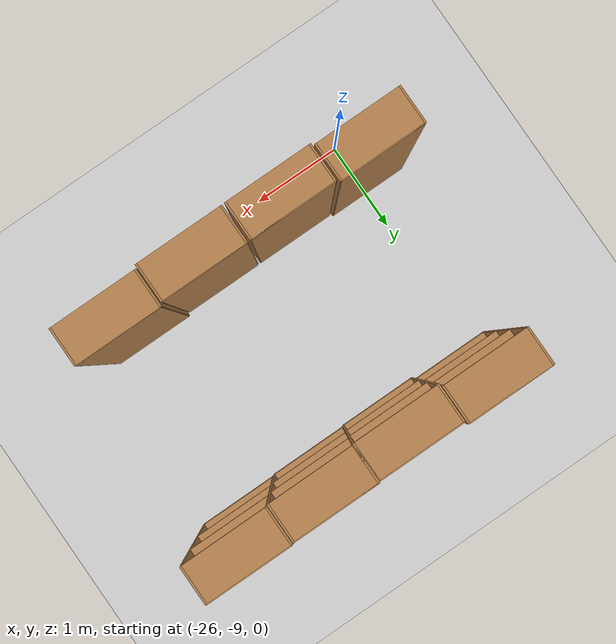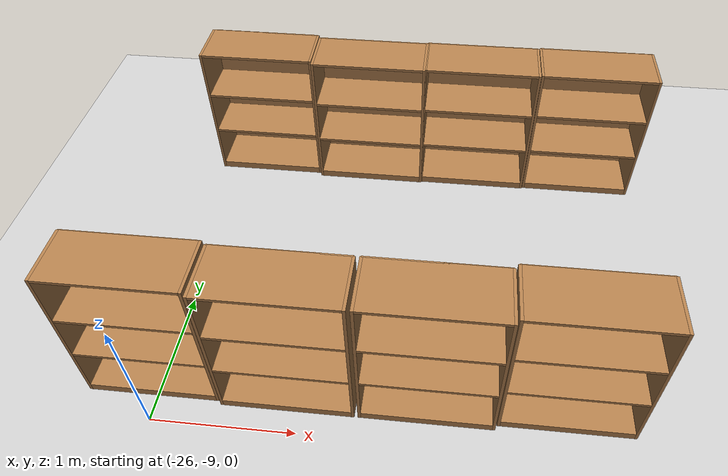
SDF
<sdf version="1.6">
 <world name="default">
  <model name="ground_plane">
   <static>1</static>
   <link name="link">
    <collision name="collision">
     <geometry><plane><normal>0 0 1</normal><size>100 100</size></plane></geometry>
     <surface><friction><ode><mu>100</mu><mu2>50</mu2></ode></friction></surface>
    </collision>
    <visual name="visual">
     <cast_shadows>0</cast_shadows>
     <geometry><plane><normal>0 0 1</normal><size>100 100</size></plane></geometry>
     <material>
      <script><uri>file://media/materials/scripts/gazebo.material</uri><name>Gazebo/Grey</name></script>
     </material>
    </visual>
   </link>
  </model>
  <model name="bookshelf">
   <static>1</static>
   <link name="link">
    <inertial><mass>1</mass></inertial>
    <collision name="back">
     <pose>0 0.005 0.6 0 -0 0</pose>
     <geometry><box><size>0.9 0.01 1.2</size></box></geometry>
    </collision>
    <visual name="visual1">
     <pose>0 0.005 0.6 0 -0 0</pose>
     <geometry><box><size>0.9 0.01 1.2</size></box></geometry>
     <material>
      <script><uri>file://media/materials/scripts/gazebo.material</uri><name>Gazebo/Wood</name></script>
     </material>
    </visual>
    <collision name="left_side">
     <pose>0.45 -0.195 0.6 0 -0 0</pose>
     <geometry><box><size>0.02 0.4 1.2</size></box></geometry>
    </collision>
    <visual name="visual2">
     <pose>0.45 -0.195 0.6 0 -0 0</pose>
     <geometry><box><size>0.02 0.4 1.2</size></box></geometry>
     <material>
      <script><uri>file://media/materials/scripts/gazebo.material</uri><name>Gazebo/Wood</name></script>
     </material>
    </visual>
    <collision name="right_side">
     <pose>-0.45 -0.195 0.6 0 -0 0</pose>
     <geometry><box><size>0.02 0.4 1.2</size></box></geometry>
    </collision>
    <visual name="visual3">
     <pose>-0.45 -0.195 0.6 0 -0 0</pose>
     <geometry><box><size>0.02 0.4 1.2</size></box></geometry>
     <material>
      <script><uri>file://media/materials/scripts/gazebo.material</uri><name>Gazebo/Wood</name></script>
     </material>
    </visual>
    <collision name="bottom">
     <pose>0 -0.195 0.03 0 -0 0</pose>
     <geometry><box><size>0.88 0.4 0.06</size></box></geometry>
    </collision>
    <visual name="visual4">
     <pose>0 -0.195 0.03 0 -0 0</pose>
     <geometry><box><size>0.88 0.4 0.06</size></box></geometry>
     <material>
      <script><uri>file://media/materials/scripts/gazebo.material</uri><name>Gazebo/Wood</name></script>
     </material>
    </visual>
    <collision name="top">
     <pose>0 -0.195 1.19 0 -0 0</pose>
     <geometry><box><size>0.88 0.4 0.02</size></box></geometry>
    </collision>
    <visual name="visual5">
     <pose>0 -0.195 1.19 0 -0 0</pose>
     <geometry><box><size>0.88 0.4 0.02</size></box></geometry>
     <material>
      <script><uri>file://media/materials/scripts/gazebo.material</uri><name>Gazebo/Wood</name></script>
     </material>
    </visual>
    <collision name="low_shelf">
     <pose>0 -0.195 0.43 0 -0 0</pose>
     <geometry><box><size>0.88 0.4 0.02</size></box></geometry>
    </collision>
    <visual name="visual6">
     <pose>0 -0.195 0.43 0 -0 0</pose>
     <geometry><box><size>0.88 0.4 0.02</size></box></geometry>
     <material>
      <script><uri>file://media/materials/scripts/gazebo.material</uri><name>Gazebo/Wood</name></script>
     </material>
    </visual>
    <collision name="high_shelf">
     <pose>0 -0.195 0.8 0 -0 0</pose>
     <geometry><box><size>0.88 0.4 0.02</size></box></geometry>
    </collision>
    <visual name="visual7">
     <pose>0 -0.195 0.8 0 -0 0</pose>
     <geometry><box><size>0.88 0.4 0.02</size></box></geometry>
     <material>
      <script><uri>file://media/materials/scripts/gazebo.material</uri><name>Gazebo/Wood</name></script>
     </material>
    </visual>
   </link>
   <pose>-23.9076 -6.07954 0 0 -0 0</pose>
  </model>
  <model name="bookshelf_0">
   <static>1</static>
   <link name="link">
    <inertial><mass>1</mass></inertial>
    <collision name="back">
     <pose>0 0.005 0.6 0 -0 0</pose>
     <geometry><box><size>0.9 0.01 1.2</size></box></geometry>
    </collision>
    <visual name="visual1">
     <pose>0 0.005 0.6 0 -0 0</pose>
     <geometry><box><size>0.9 0.01 1.2</size></box></geometry>
     <material>
      <script><uri>file://media/materials/scripts/gazebo.material</uri><name>Gazebo/Wood</name></script>
     </material>
    </visual>
    <collision name="left_side">
     <pose>0.45 -0.195 0.6 0 -0 0</pose>
     <geometry><box><size>0.02 0.4 1.2</size></box></geometry>
    </collision>
    <visual name="visual2">
     <pose>0.45 -0.195 0.6 0 -0 0</pose>
     <geometry><box><size>0.02 0.4 1.2</size></box></geometry>
     <material>
      <script><uri>file://media/materials/scripts/gazebo.material</uri><name>Gazebo/Wood</name></script>
     </material>
    </visual>
    <collision name="right_side">
     <pose>-0.45 -0.195 0.6 0 -0 0</pose>
     <geometry><box><size>0.02 0.4 1.2</size></box></geometry>
    </collision>
    <visual name="visual3">
     <pose>-0.45 -0.195 0.6 0 -0 0</pose>
     <geometry><box><size>0.02 0.4 1.2</size></box></geometry>
     <material>
      <script><uri>file://media/materials/scripts/gazebo.material</uri><name>Gazebo/Wood</name></script>
     </material>
    </visual>
    <collision name="bottom">
     <pose>0 -0.195 0.03 0 -0 0</pose>
     <geometry><box><size>0.88 0.4 0.06</size></box></geometry>
    </collision>
    <visual name="visual4">
     <pose>0 -0.195 0.03 0 -0 0</pose>
     <geometry><box><size>0.88 0.4 0.06</size></box></geometry>
     <material>
      <script><uri>file://media/materials/scripts/gazebo.material</uri><name>Gazebo/Wood</name></script>
     </material>
    </visual>
    <collision name="top">
     <pose>0 -0.195 1.19 0 -0 0</pose>
     <geometry><box><size>0.88 0.4 0.02</size></box></geometry>
    </collision>
    <visual name="visual5">
     <pose>0 -0.195 1.19 0 -0 0</pose>
     <geometry><box><size>0.88 0.4 0.02</size></box></geometry>
     <material>
      <script><uri>file://media/materials/scripts/gazebo.material</uri><name>Gazebo/Wood</name></script>
     </material>
    </visual>
    <collision name="low_shelf">
     <pose>0 -0.195 0.43 0 -0 0</pose>
     <geometry><box><size>0.88 0.4 0.02</size></box></geometry>
    </collision>
    <visual name="visual6">
     <pose>0 -0.195 0.43 0 -0 0</pose>
     <geometry><box><size>0.88 0.4 0.02</size></box></geometry>
     <material>
      <script><uri>file://media/materials/scripts/gazebo.material</uri><name>Gazebo/Wood</name></script>
     </material>
    </visual>
    <collision name="high_shelf">
     <pose>0 -0.195 0.8 0 -0 0</pose>
     <geometry><box><size>0.88 0.4 0.02</size></box></geometry>
    </collision>
    <visual name="visual7">
     <pose>0 -0.195 0.8 0 -0 0</pose>
     <geometry><box><size>0.88 0.4 0.02</size></box></geometry>
     <material>
      <script><uri>file://media/materials/scripts/gazebo.material</uri><name>Gazebo/Wood</name></script>
     </material>
    </visual>
   </link>
   <pose>-22.9842 -6.06926 0 0 -0 0</pose>
  </model>
  <model name="bookshelf_1">
   <static>1</static>
   <link name="link">
    <inertial><mass>1</mass></inertial>
    <collision name="back">
     <pose>0 0.005 0.6 0 -0 0</pose>
     <geometry><box><size>0.9 0.01 1.2</size></box></geometry>
    </collision>
    <visual name="visual1">
     <pose>0 0.005 0.6 0 -0 0</pose>
     <geometry><box><size>0.9 0.01 1.2</size></box></geometry>
     <material>
      <script><uri>file://media/materials/scripts/gazebo.material</uri><name>Gazebo/Wood</name></script>
     </material>
    </visual>
    <collision name="left_side">
     <pose>0.45 -0.195 0.6 0 -0 0</pose>
     <geometry><box><size>0.02 0.4 1.2</size></box></geometry>
    </collision>
    <visual name="visual2">
     <pose>0.45 -0.195 0.6 0 -0 0</pose>
     <geometry><box><size>0.02 0.4 1.2</size></box></geometry>
     <material>
      <script><uri>file://media/materials/scripts/gazebo.material</uri><name>Gazebo/Wood</name></script>
     </material>
    </visual>
    <collision name="right_side">
     <pose>-0.45 -0.195 0.6 0 -0 0</pose>
     <geometry><box><size>0.02 0.4 1.2</size></box></geometry>
    </collision>
    <visual name="visual3">
     <pose>-0.45 -0.195 0.6 0 -0 0</pose>
     <geometry><box><size>0.02 0.4 1.2</size></box></geometry>
     <material>
      <script><uri>file://media/materials/scripts/gazebo.material</uri><name>Gazebo/Wood</name></script>
     </material>
    </visual>
    <collision name="bottom">
     <pose>0 -0.195 0.03 0 -0 0</pose>
     <geometry><box><size>0.88 0.4 0.06</size></box></geometry>
    </collision>
    <visual name="visual4">
     <pose>0 -0.195 0.03 0 -0 0</pose>
     <geometry><box><size>0.88 0.4 0.06</size></box></geometry>
     <material>
      <script><uri>file://media/materials/scripts/gazebo.material</uri><name>Gazebo/Wood</name></script>
     </material>
    </visual>
    <collision name="top">
     <pose>0 -0.195 1.19 0 -0 0</pose>
     <geometry><box><size>0.88 0.4 0.02</size></box></geometry>
    </collision>
    <visual name="visual5">
     <pose>0 -0.195 1.19 0 -0 0</pose>
     <geometry><box><size>0.88 0.4 0.02</size></box></geometry>
     <material>
      <script><uri>file://media/materials/scripts/gazebo.material</uri><name>Gazebo/Wood</name></script>
     </material>
    </visual>
    <collision name="low_shelf">
     <pose>0 -0.195 0.43 0 -0 0</pose>
     <geometry><box><size>0.88 0.4 0.02</size></box></geometry>
    </collision>
    <visual name="visual6">
     <pose>0 -0.195 0.43 0 -0 0</pose>
     <geometry><box><size>0.88 0.4 0.02</size></box></geometry>
     <material>
      <script><uri>file://media/materials/scripts/gazebo.material</uri><name>Gazebo/Wood</name></script>
     </material>
    </visual>
    <collision name="high_shelf">
     <pose>0 -0.195 0.8 0 -0 0</pose>
     <geometry><box><size>0.88 0.4 0.02</size></box></geometry>
    </collision>
    <visual name="visual7">
     <pose>0 -0.195 0.8 0 -0 0</pose>
     <geometry><box><size>0.88 0.4 0.02</size></box></geometry>
     <material>
      <script><uri>file://media/materials/scripts/gazebo.material</uri><name>Gazebo/Wood</name></script>
     </material>
    </visual>
   </link>
   <pose>-24.8172 -6.09045 0 0 -0 0</pose>
  </model>
  <model name="bookshelf_2">
   <static>1</static>
   <link name="link">
    <inertial><mass>1</mass></inertial>
    <collision name="back">
     <pose>0 0.005 0.6 0 -0 0</pose>
     <geometry><box><size>0.9 0.01 1.2</size></box></geometry>
    </collision>
    <visual name="visual1">
     <pose>0 0.005 0.6 0 -0 0</pose>
     <geometry><box><size>0.9 0.01 1.2</size></box></geometry>
     <material>
      <script><uri>file://media/materials/scripts/gazebo.material</uri><name>Gazebo/Wood</name></script>
     </material>
    </visual>
    <collision name="left_side">
     <pose>0.45 -0.195 0.6 0 -0 0</pose>
     <geometry><box><size>0.02 0.4 1.2</size></box></geometry>
    </collision>
    <visual name="visual2">
     <pose>0.45 -0.195 0.6 0 -0 0</pose>
     <geometry><box><size>0.02 0.4 1.2</size></box></geometry>
     <material>
      <script><uri>file://media/materials/scripts/gazebo.material</uri><name>Gazebo/Wood</name></script>
     </material>
    </visual>
    <collision name="right_side">
     <pose>-0.45 -0.195 0.6 0 -0 0</pose>
     <geometry><box><size>0.02 0.4 1.2</size></box></geometry>
    </collision>
    <visual name="visual3">
     <pose>-0.45 -0.195 0.6 0 -0 0</pose>
     <geometry><box><size>0.02 0.4 1.2</size></box></geometry>
     <material>
      <script><uri>file://media/materials/scripts/gazebo.material</uri><name>Gazebo/Wood</name></script>
     </material>
    </visual>
    <collision name="bottom">
     <pose>0 -0.195 0.03 0 -0 0</pose>
     <geometry><box><size>0.88 0.4 0.06</size></box></geometry>
    </collision>
    <visual name="visual4">
     <pose>0 -0.195 0.03 0 -0 0</pose>
     <geometry><box><size>0.88 0.4 0.06</size></box></geometry>
     <material>
      <script><uri>file://media/materials/scripts/gazebo.material</uri><name>Gazebo/Wood</name></script>
     </material>
    </visual>
    <collision name="top">
     <pose>0 -0.195 1.19 0 -0 0</pose>
     <geometry><box><size>0.88 0.4 0.02</size></box></geometry>
    </collision>
    <visual name="visual5">
     <pose>0 -0.195 1.19 0 -0 0</pose>
     <geometry><box><size>0.88 0.4 0.02</size></box></geometry>
     <material>
      <script><uri>file://media/materials/scripts/gazebo.material</uri><name>Gazebo/Wood</name></script>
     </material>
    </visual>
    <collision name="low_shelf">
     <pose>0 -0.195 0.43 0 -0 0</pose>
     <geometry><box><size>0.88 0.4 0.02</size></box></geometry>
    </collision>
    <visual name="visual6">
     <pose>0 -0.195 0.43 0 -0 0</pose>
     <geometry><box><size>0.88 0.4 0.02</size></box></geometry>
     <material>
      <script><uri>file://media/materials/scripts/gazebo.material</uri><name>Gazebo/Wood</name></script>
     </material>
    </visual>
    <collision name="high_shelf">
     <pose>0 -0.195 0.8 0 -0 0</pose>
     <geometry><box><size>0.88 0.4 0.02</size></box></geometry>
    </collision>
    <visual name="visual7">
     <pose>0 -0.195 0.8 0 -0 0</pose>
     <geometry><box><size>0.88 0.4 0.02</size></box></geometry>
     <material>
      <script><uri>file://media/materials/scripts/gazebo.material</uri><name>Gazebo/Wood</name></script>
     </material>
    </visual>
   </link>
   <pose>-25.7417 -6.05587 0 0 -0 0</pose>
  </model>
  <model name="bookshelf_4">
   <static>1</static>
   <link name="link">
    <inertial><mass>1</mass></inertial>
    <collision name="back">
     <pose>0 0.005 0.6 0 -0 0</pose>
     <geometry><box><size>0.9 0.01 1.2</size></box></geometry>
    </collision>
    <visual name="visual1">
     <pose>0 0.005 0.6 0 -0 0</pose>
     <geometry><box><size>0.9 0.01 1.2</size></box></geometry>
     <material>
      <script><uri>file://media/materials/scripts/gazebo.material</uri><name>Gazebo/Wood</name></script>
     </material>
    </visual>
    <collision name="left_side">
     <pose>0.45 -0.195 0.6 0 -0 0</pose>
     <geometry><box><size>0.02 0.4 1.2</size></box></geometry>
    </collision>
    <visual name="visual2">
     <pose>0.45 -0.195 0.6 0 -0 0</pose>
     <geometry><box><size>0.02 0.4 1.2</size></box></geometry>
     <material>
      <script><uri>file://media/materials/scripts/gazebo.material</uri><name>Gazebo/Wood</name></script>
     </material>
    </visual>
    <collision name="right_side">
     <pose>-0.45 -0.195 0.6 0 -0 0</pose>
     <geometry><box><size>0.02 0.4 1.2</size></box></geometry>
    </collision>
    <visual name="visual3">
     <pose>-0.45 -0.195 0.6 0 -0 0</pose>
     <geometry><box><size>0.02 0.4 1.2</size></box></geometry>
     <material>
      <script><uri>file://media/materials/scripts/gazebo.material</uri><name>Gazebo/Wood</name></script>
     </material>
    </visual>
    <collision name="bottom">
     <pose>0 -0.195 0.03 0 -0 0</pose>
     <geometry><box><size>0.88 0.4 0.06</size></box></geometry>
    </collision>
    <visual name="visual4">
     <pose>0 -0.195 0.03 0 -0 0</pose>
     <geometry><box><size>0.88 0.4 0.06</size></box></geometry>
     <material>
      <script><uri>file://media/materials/scripts/gazebo.material</uri><name>Gazebo/Wood</name></script>
     </material>
    </visual>
    <collision name="top">
     <pose>0 -0.195 1.19 0 -0 0</pose>
     <geometry><box><size>0.88 0.4 0.02</size></box></geometry>
    </collision>
    <visual name="visual5">
     <pose>0 -0.195 1.19 0 -0 0</pose>
     <geometry><box><size>0.88 0.4 0.02</size></box></geometry>
     <material>
      <script><uri>file://media/materials/scripts/gazebo.material</uri><name>Gazebo/Wood</name></script>
     </material>
    </visual>
    <collision name="low_shelf">
     <pose>0 -0.195 0.43 0 -0 0</pose>
     <geometry><box><size>0.88 0.4 0.02</size></box></geometry>
    </collision>
    <visual name="visual6">
     <pose>0 -0.195 0.43 0 -0 0</pose>
     <geometry><box><size>0.88 0.4 0.02</size></box></geometry>
     <material>
      <script><uri>file://media/materials/scripts/gazebo.material</uri><name>Gazebo/Wood</name></script>
     </material>
    </visual>
    <collision name="high_shelf">
     <pose>0 -0.195 0.8 0 -0 0</pose>
     <geometry><box><size>0.88 0.4 0.02</size></box></geometry>
    </collision>
    <visual name="visual7">
     <pose>0 -0.195 0.8 0 -0 0</pose>
     <geometry><box><size>0.88 0.4 0.02</size></box></geometry>
     <material>
      <script><uri>file://media/materials/scripts/gazebo.material</uri><name>Gazebo/Wood</name></script>
     </material>
    </visual>
   </link>
   <pose>-26.0318 -8.42234 0 0 -0 0</pose>
  </model>
  <model name="bookshelf_5">
   <static>1</static>
   <link name="link">
    <inertial><mass>1</mass></inertial>
    <collision name="back">
     <pose>0 0.005 0.6 0 -0 0</pose>
     <geometry><box><size>0.9 0.01 1.2</size></box></geometry>
    </collision>
    <visual name="visual1">
     <pose>0 0.005 0.6 0 -0 0</pose>
     <geometry><box><size>0.9 0.01 1.2</size></box></geometry>
     <material>
      <script><uri>file://media/materials/scripts/gazebo.material</uri><name>Gazebo/Wood</name></script>
     </material>
    </visual>
    <collision name="left_side">
     <pose>0.45 -0.195 0.6 0 -0 0</pose>
     <geometry><box><size>0.02 0.4 1.2</size></box></geometry>
    </collision>
    <visual name="visual2">
     <pose>0.45 -0.195 0.6 0 -0 0</pose>
     <geometry><box><size>0.02 0.4 1.2</size></box></geometry>
     <material>
      <script><uri>file://media/materials/scripts/gazebo.material</uri><name>Gazebo/Wood</name></script>
     </material>
    </visual>
    <collision name="right_side">
     <pose>-0.45 -0.195 0.6 0 -0 0</pose>
     <geometry><box><size>0.02 0.4 1.2</size></box></geometry>
    </collision>
    <visual name="visual3">
     <pose>-0.45 -0.195 0.6 0 -0 0</pose>
     <geometry><box><size>0.02 0.4 1.2</size></box></geometry>
     <material>
      <script><uri>file://media/materials/scripts/gazebo.material</uri><name>Gazebo/Wood</name></script>
     </material>
    </visual>
    <collision name="bottom">
     <pose>0 -0.195 0.03 0 -0 0</pose>
     <geometry><box><size>0.88 0.4 0.06</size></box></geometry>
    </collision>
    <visual name="visual4">
     <pose>0 -0.195 0.03 0 -0 0</pose>
     <geometry><box><size>0.88 0.4 0.06</size></box></geometry>
     <material>
      <script><uri>file://media/materials/scripts/gazebo.material</uri><name>Gazebo/Wood</name></script>
     </material>
    </visual>
    <collision name="top">
     <pose>0 -0.195 1.19 0 -0 0</pose>
     <geometry><box><size>0.88 0.4 0.02</size></box></geometry>
    </collision>
    <visual name="visual5">
     <pose>0 -0.195 1.19 0 -0 0</pose>
     <geometry><box><size>0.88 0.4 0.02</size></box></geometry>
     <material>
      <script><uri>file://media/materials/scripts/gazebo.material</uri><name>Gazebo/Wood</name></script>
     </material>
    </visual>
    <collision name="low_shelf">
     <pose>0 -0.195 0.43 0 -0 0</pose>
     <geometry><box><size>0.88 0.4 0.02</size></box></geometry>
    </collision>
    <visual name="visual6">
     <pose>0 -0.195 0.43 0 -0 0</pose>
     <geometry><box><size>0.88 0.4 0.02</size></box></geometry>
     <material>
      <script><uri>file://media/materials/scripts/gazebo.material</uri><name>Gazebo/Wood</name></script>
     </material>
    </visual>
    <collision name="high_shelf">
     <pose>0 -0.195 0.8 0 -0 0</pose>
     <geometry><box><size>0.88 0.4 0.02</size></box></geometry>
    </collision>
    <visual name="visual7">
     <pose>0 -0.195 0.8 0 -0 0</pose>
     <geometry><box><size>0.88 0.4 0.02</size></box></geometry>
     <material>
      <script><uri>file://media/materials/scripts/gazebo.material</uri><name>Gazebo/Wood</name></script>
     </material>
    </visual>
   </link>
   <pose>-23.2183 -8.41326 0 0 -0 0</pose>
  </model>
  <model name="bookshelf_6">
   <static>1</static>
   <link name="link">
    <inertial><mass>1</mass></inertial>
    <collision name="back">
     <pose>0 0.005 0.6 0 -0 0</pose>
     <geometry><box><size>0.9 0.01 1.2</size></box></geometry>
    </collision>
    <visual name="visual1">
     <pose>0 0.005 0.6 0 -0 0</pose>
     <geometry><box><size>0.9 0.01 1.2</size></box></geometry>
     <material>
      <script><uri>file://media/materials/scripts/gazebo.material</uri><name>Gazebo/Wood</name></script>
     </material>
    </visual>
    <collision name="left_side">
     <pose>0.45 -0.195 0.6 0 -0 0</pose>
     <geometry><box><size>0.02 0.4 1.2</size></box></geometry>
    </collision>
    <visual name="visual2">
     <pose>0.45 -0.195 0.6 0 -0 0</pose>
     <geometry><box><size>0.02 0.4 1.2</size></box></geometry>
     <material>
      <script><uri>file://media/materials/scripts/gazebo.material</uri><name>Gazebo/Wood</name></script>
     </material>
    </visual>
    <collision name="right_side">
     <pose>-0.45 -0.195 0.6 0 -0 0</pose>
     <geometry><box><size>0.02 0.4 1.2</size></box></geometry>
    </collision>
    <visual name="visual3">
     <pose>-0.45 -0.195 0.6 0 -0 0</pose>
     <geometry><box><size>0.02 0.4 1.2</size></box></geometry>
     <material>
      <script><uri>file://media/materials/scripts/gazebo.material</uri><name>Gazebo/Wood</name></script>
     </material>
    </visual>
    <collision name="bottom">
     <pose>0 -0.195 0.03 0 -0 0</pose>
     <geometry><box><size>0.88 0.4 0.06</size></box></geometry>
    </collision>
    <visual name="visual4">
     <pose>0 -0.195 0.03 0 -0 0</pose>
     <geometry><box><size>0.88 0.4 0.06</size></box></geometry>
     <material>
      <script><uri>file://media/materials/scripts/gazebo.material</uri><name>Gazebo/Wood</name></script>
     </material>
    </visual>
    <collision name="top">
     <pose>0 -0.195 1.19 0 -0 0</pose>
     <geometry><box><size>0.88 0.4 0.02</size></box></geometry>
    </collision>
    <visual name="visual5">
     <pose>0 -0.195 1.19 0 -0 0</pose>
     <geometry><box><size>0.88 0.4 0.02</size></box></geometry>
     <material>
      <script><uri>file://media/materials/scripts/gazebo.material</uri><name>Gazebo/Wood</name></script>
     </material>
    </visual>
    <collision name="low_shelf">
     <pose>0 -0.195 0.43 0 -0 0</pose>
     <geometry><box><size>0.88 0.4 0.02</size></box></geometry>
    </collision>
    <visual name="visual6">
     <pose>0 -0.195 0.43 0 -0 0</pose>
     <geometry><box><size>0.88 0.4 0.02</size></box></geometry>
     <material>
      <script><uri>file://media/materials/scripts/gazebo.material</uri><name>Gazebo/Wood</name></script>
     </material>
    </visual>
    <collision name="high_shelf">
     <pose>0 -0.195 0.8 0 -0 0</pose>
     <geometry><box><size>0.88 0.4 0.02</size></box></geometry>
    </collision>
    <visual name="visual7">
     <pose>0 -0.195 0.8 0 -0 0</pose>
     <geometry><box><size>0.88 0.4 0.02</size></box></geometry>
     <material>
      <script><uri>file://media/materials/scripts/gazebo.material</uri><name>Gazebo/Wood</name></script>
     </material>
    </visual>
   </link>
   <pose>-24.15 -8.44667 0 0 -0 0</pose>
  </model>
  <model name="bookshelf_13">
   <static>1</static>
   <link name="link">
    <inertial><mass>1</mass></inertial>
    <collision name="back">
     <pose>0 0.005 0.6 0 -0 0</pose>
     <geometry><box><size>0.9 0.01 1.2</size></box></geometry>
    </collision>
    <visual name="visual1">
     <pose>0 0.005 0.6 0 -0 0</pose>
     <geometry><box><size>0.9 0.01 1.2</size></box></geometry>
     <material>
      <script><uri>file://media/materials/scripts/gazebo.material</uri><name>Gazebo/Wood</name></script>
     </material>
    </visual>
    <collision name="left_side">
     <pose>0.45 -0.195 0.6 0 -0 0</pose>
     <geometry><box><size>0.02 0.4 1.2</size></box></geometry>
    </collision>
    <visual name="visual2">
     <pose>0.45 -0.195 0.6 0 -0 0</pose>
     <geometry><box><size>0.02 0.4 1.2</size></box></geometry>
     <material>
      <script><uri>file://media/materials/scripts/gazebo.material</uri><name>Gazebo/Wood</name></script>
     </material>
    </visual>
    <collision name="right_side">
     <pose>-0.45 -0.195 0.6 0 -0 0</pose>
     <geometry><box><size>0.02 0.4 1.2</size></box></geometry>
    </collision>
    <visual name="visual3">
     <pose>-0.45 -0.195 0.6 0 -0 0</pose>
     <geometry><box><size>0.02 0.4 1.2</size></box></geometry>
     <material>
      <script><uri>file://media/materials/scripts/gazebo.material</uri><name>Gazebo/Wood</name></script>
     </material>
    </visual>
    <collision name="bottom">
     <pose>0 -0.195 0.03 0 -0 0</pose>
     <geometry><box><size>0.88 0.4 0.06</size></box></geometry>
    </collision>
    <visual name="visual4">
     <pose>0 -0.195 0.03 0 -0 0</pose>
     <geometry><box><size>0.88 0.4 0.06</size></box></geometry>
     <material>
      <script><uri>file://media/materials/scripts/gazebo.material</uri><name>Gazebo/Wood</name></script>
     </material>
    </visual>
    <collision name="top">
     <pose>0 -0.195 1.19 0 -0 0</pose>
     <geometry><box><size>0.88 0.4 0.02</size></box></geometry>
    </collision>
    <visual name="visual5">
     <pose>0 -0.195 1.19 0 -0 0</pose>
     <geometry><box><size>0.88 0.4 0.02</size></box></geometry>
     <material>
      <script><uri>file://media/materials/scripts/gazebo.material</uri><name>Gazebo/Wood</name></script>
     </material>
    </visual>
    <collision name="low_shelf">
     <pose>0 -0.195 0.43 0 -0 0</pose>
     <geometry><box><size>0.88 0.4 0.02</size></box></geometry>
    </collision>
    <visual name="visual6">
     <pose>0 -0.195 0.43 0 -0 0</pose>
     <geometry><box><size>0.88 0.4 0.02</size></box></geometry>
     <material>
      <script><uri>file://media/materials/scripts/gazebo.material</uri><name>Gazebo/Wood</name></script>
     </material>
    </visual>
    <collision name="high_shelf">
     <pose>0 -0.195 0.8 0 -0 0</pose>
     <geometry><box><size>0.88 0.4 0.02</size></box></geometry>
    </collision>
    <visual name="visual7">
     <pose>0 -0.195 0.8 0 -0 0</pose>
     <geometry><box><size>0.88 0.4 0.02</size></box></geometry>
     <material>
      <script><uri>file://media/materials/scripts/gazebo.material</uri><name>Gazebo/Wood</name></script>
     </material>
    </visual>
   </link>
   <pose>-25.0937 -8.44829 0 0 -0 0</pose>
  </model>
 </world>
</sdf>
